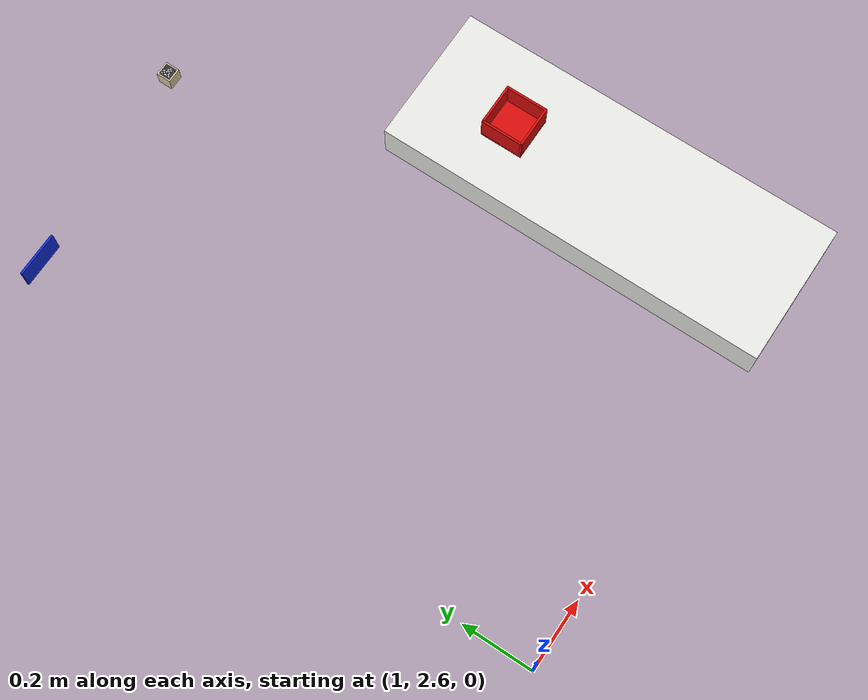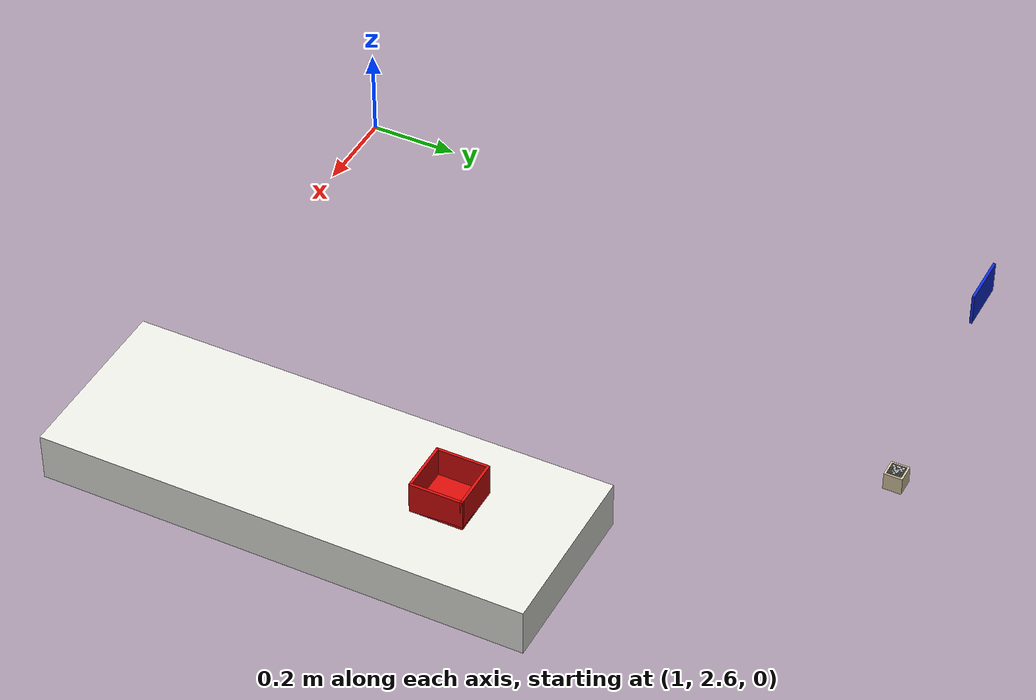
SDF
<sdf version="1.9">
 <world name="arena">
  <model name="cube_6">
   <pose>1.71626 4.16978 0.18200 0 0 0</pose>
   <link name="body">
    <inertial>
     <mass>0.04</mass>
     <inertia>
      <ixx>0.000010667</ixx>
      <iyy>0.000010667</iyy>
      <izz>0.000010667</izz>
      <ixy>0</ixy>
      <ixz>0</ixz>
      <iyz>0</iyz>
     </inertia>
    </inertial>
    <collision name="cube">
     <geometry><box><size>0.04 0.04 0.04</size></box></geometry>
     <surface><friction><ode><mu>1.2</mu><mu2>1.2</mu2></ode></friction></surface>
    </collision>
    <visual name="cube_appearance">
     <geometry><box><size>0.04 0.04 0.04</size></box></geometry>
     <material><ambient>0.85 0.79 0.64 1</ambient><diffuse>0.85 0.79 0.64 1</diffuse></material>
    </visual>
    <visual name="tag_0_0">
     <pose>-0.0140 0.0140 0.0202 0 0 0</pose>
     <geometry><plane><normal>0 0 1</normal><size>0.004 0.004</size></plane></geometry>
     <material><ambient>0.01 0.01 0.01 1</ambient><diffuse>0.01 0.01 0.01 1</diffuse></material>
    </visual>
    <visual name="tag_0_1">
     <pose>-0.0100 0.0140 0.0202 0 0 0</pose>
     <geometry><plane><normal>0 0 1</normal><size>0.004 0.004</size></plane></geometry>
     <material><ambient>0.01 0.01 0.01 1</ambient><diffuse>0.01 0.01 0.01 1</diffuse></material>
    </visual>
    <visual name="tag_0_2">
     <pose>-0.0060 0.0140 0.0202 0 0 0</pose>
     <geometry><plane><normal>0 0 1</normal><size>0.004 0.004</size></plane></geometry>
     <material><ambient>0.01 0.01 0.01 1</ambient><diffuse>0.01 0.01 0.01 1</diffuse></material>
    </visual>
    <visual name="tag_0_3">
     <pose>-0.0020 0.0140 0.0202 0 0 0</pose>
     <geometry><plane><normal>0 0 1</normal><size>0.004 0.004</size></plane></geometry>
     <material><ambient>0.01 0.01 0.01 1</ambient><diffuse>0.01 0.01 0.01 1</diffuse></material>
    </visual>
    <visual name="tag_0_4">
     <pose>0.0020 0.0140 0.0202 0 0 0</pose>
     <geometry><plane><normal>0 0 1</normal><size>0.004 0.004</size></plane></geometry>
     <material><ambient>0.01 0.01 0.01 1</ambient><diffuse>0.01 0.01 0.01 1</diffuse></material>
    </visual>
    <visual name="tag_0_5">
     <pose>0.0060 0.0140 0.0202 0 0 0</pose>
     <geometry><plane><normal>0 0 1</normal><size>0.004 0.004</size></plane></geometry>
     <material><ambient>0.01 0.01 0.01 1</ambient><diffuse>0.01 0.01 0.01 1</diffuse></material>
    </visual>
    <visual name="tag_0_6">
     <pose>0.0100 0.0140 0.0202 0 0 0</pose>
     <geometry><plane><normal>0 0 1</normal><size>0.004 0.004</size></plane></geometry>
     <material><ambient>0.01 0.01 0.01 1</ambient><diffuse>0.01 0.01 0.01 1</diffuse></material>
    </visual>
    <visual name="tag_0_7">
     <pose>0.0140 0.0140 0.0202 0 0 0</pose>
     <geometry><plane><normal>0 0 1</normal><size>0.004 0.004</size></plane></geometry>
     <material><ambient>0.01 0.01 0.01 1</ambient><diffuse>0.01 0.01 0.01 1</diffuse></material>
    </visual>
    <visual name="tag_1_0">
     <pose>-0.0140 0.0100 0.0202 0 0 0</pose>
     <geometry><plane><normal>0 0 1</normal><size>0.004 0.004</size></plane></geometry>
     <material><ambient>0.01 0.01 0.01 1</ambient><diffuse>0.01 0.01 0.01 1</diffuse></material>
    </visual>
    <visual name="tag_1_1">
     <pose>-0.0100 0.0100 0.0202 0 0 0</pose>
     <geometry><plane><normal>0 0 1</normal><size>0.004 0.004</size></plane></geometry>
     <material><ambient>0.95 0.95 0.95 1</ambient><diffuse>0.95 0.95 0.95 1</diffuse></material>
    </visual>
    <visual name="tag_1_2">
     <pose>-0.0060 0.0100 0.0202 0 0 0</pose>
     <geometry><plane><normal>0 0 1</normal><size>0.004 0.004</size></plane></geometry>
     <material><ambient>0.01 0.01 0.01 1</ambient><diffuse>0.01 0.01 0.01 1</diffuse></material>
    </visual>
    <visual name="tag_1_3">
     <pose>-0.0020 0.0100 0.0202 0 0 0</pose>
     <geometry><plane><normal>0 0 1</normal><size>0.004 0.004</size></plane></geometry>
     <material><ambient>0.95 0.95 0.95 1</ambient><diffuse>0.95 0.95 0.95 1</diffuse></material>
    </visual>
    <visual name="tag_1_4">
     <pose>0.0020 0.0100 0.0202 0 0 0</pose>
     <geometry><plane><normal>0 0 1</normal><size>0.004 0.004</size></plane></geometry>
     <material><ambient>0.01 0.01 0.01 1</ambient><diffuse>0.01 0.01 0.01 1</diffuse></material>
    </visual>
    <visual name="tag_1_5">
     <pose>0.0060 0.0100 0.0202 0 0 0</pose>
     <geometry><plane><normal>0 0 1</normal><size>0.004 0.004</size></plane></geometry>
     <material><ambient>0.01 0.01 0.01 1</ambient><diffuse>0.01 0.01 0.01 1</diffuse></material>
    </visual>
    <visual name="tag_1_6">
     <pose>0.0100 0.0100 0.0202 0 0 0</pose>
     <geometry><plane><normal>0 0 1</normal><size>0.004 0.004</size></plane></geometry>
     <material><ambient>0.01 0.01 0.01 1</ambient><diffuse>0.01 0.01 0.01 1</diffuse></material>
    </visual>
    <visual name="tag_1_7">
     <pose>0.0140 0.0100 0.0202 0 0 0</pose>
     <geometry><plane><normal>0 0 1</normal><size>0.004 0.004</size></plane></geometry>
     <material><ambient>0.01 0.01 0.01 1</ambient><diffuse>0.01 0.01 0.01 1</diffuse></material>
    </visual>
    <visual name="tag_2_0">
     <pose>-0.0140 0.0060 0.0202 0 0 0</pose>
     <geometry><plane><normal>0 0 1</normal><size>0.004 0.004</size></plane></geometry>
     <material><ambient>0.01 0.01 0.01 1</ambient><diffuse>0.01 0.01 0.01 1</diffuse></material>
    </visual>
    <visual name="tag_2_1">
     <pose>-0.0100 0.0060 0.0202 0 0 0</pose>
     <geometry><plane><normal>0 0 1</normal><size>0.004 0.004</size></plane></geometry>
     <material><ambient>0.01 0.01 0.01 1</ambient><diffuse>0.01 0.01 0.01 1</diffuse></material>
    </visual>
    <visual name="tag_2_2">
     <pose>-0.0060 0.0060 0.0202 0 0 0</pose>
     <geometry><plane><normal>0 0 1</normal><size>0.004 0.004</size></plane></geometry>
     <material><ambient>0.95 0.95 0.95 1</ambient><diffuse>0.95 0.95 0.95 1</diffuse></material>
    </visual>
    <visual name="tag_2_3">
     <pose>-0.0020 0.0060 0.0202 0 0 0</pose>
     <geometry><plane><normal>0 0 1</normal><size>0.004 0.004</size></plane></geometry>
     <material><ambient>0.01 0.01 0.01 1</ambient><diffuse>0.01 0.01 0.01 1</diffuse></material>
    </visual>
    <visual name="tag_2_4">
     <pose>0.0020 0.0060 0.0202 0 0 0</pose>
     <geometry><plane><normal>0 0 1</normal><size>0.004 0.004</size></plane></geometry>
     <material><ambient>0.01 0.01 0.01 1</ambient><diffuse>0.01 0.01 0.01 1</diffuse></material>
    </visual>
    <visual name="tag_2_5">
     <pose>0.0060 0.0060 0.0202 0 0 0</pose>
     <geometry><plane><normal>0 0 1</normal><size>0.004 0.004</size></plane></geometry>
     <material><ambient>0.01 0.01 0.01 1</ambient><diffuse>0.01 0.01 0.01 1</diffuse></material>
    </visual>
    <visual name="tag_2_6">
     <pose>0.0100 0.0060 0.0202 0 0 0</pose>
     <geometry><plane><normal>0 0 1</normal><size>0.004 0.004</size></plane></geometry>
     <material><ambient>0.01 0.01 0.01 1</ambient><diffuse>0.01 0.01 0.01 1</diffuse></material>
    </visual>
    <visual name="tag_2_7">
     <pose>0.0140 0.0060 0.0202 0 0 0</pose>
     <geometry><plane><normal>0 0 1</normal><size>0.004 0.004</size></plane></geometry>
     <material><ambient>0.01 0.01 0.01 1</ambient><diffuse>0.01 0.01 0.01 1</diffuse></material>
    </visual>
    <visual name="tag_3_0">
     <pose>-0.0140 0.0020 0.0202 0 0 0</pose>
     <geometry><plane><normal>0 0 1</normal><size>0.004 0.004</size></plane></geometry>
     <material><ambient>0.01 0.01 0.01 1</ambient><diffuse>0.01 0.01 0.01 1</diffuse></material>
    </visual>
    <visual name="tag_3_1">
     <pose>-0.0100 0.0020 0.0202 0 0 0</pose>
     <geometry><plane><normal>0 0 1</normal><size>0.004 0.004</size></plane></geometry>
     <material><ambient>0.95 0.95 0.95 1</ambient><diffuse>0.95 0.95 0.95 1</diffuse></material>
    </visual>
    <visual name="tag_3_2">
     <pose>-0.0060 0.0020 0.0202 0 0 0</pose>
     <geometry><plane><normal>0 0 1</normal><size>0.004 0.004</size></plane></geometry>
     <material><ambient>0.01 0.01 0.01 1</ambient><diffuse>0.01 0.01 0.01 1</diffuse></material>
    </visual>
    <visual name="tag_3_3">
     <pose>-0.0020 0.0020 0.0202 0 0 0</pose>
     <geometry><plane><normal>0 0 1</normal><size>0.004 0.004</size></plane></geometry>
     <material><ambient>0.95 0.95 0.95 1</ambient><diffuse>0.95 0.95 0.95 1</diffuse></material>
    </visual>
    <visual name="tag_3_4">
     <pose>0.0020 0.0020 0.0202 0 0 0</pose>
     <geometry><plane><normal>0 0 1</normal><size>0.004 0.004</size></plane></geometry>
     <material><ambient>0.95 0.95 0.95 1</ambient><diffuse>0.95 0.95 0.95 1</diffuse></material>
    </visual>
    <visual name="tag_3_5">
     <pose>0.0060 0.0020 0.0202 0 0 0</pose>
     <geometry><plane><normal>0 0 1</normal><size>0.004 0.004</size></plane></geometry>
     <material><ambient>0.95 0.95 0.95 1</ambient><diffuse>0.95 0.95 0.95 1</diffuse></material>
    </visual>
    <visual name="tag_3_6">
     <pose>0.0100 0.0020 0.0202 0 0 0</pose>
     <geometry><plane><normal>0 0 1</normal><size>0.004 0.004</size></plane></geometry>
     <material><ambient>0.01 0.01 0.01 1</ambient><diffuse>0.01 0.01 0.01 1</diffuse></material>
    </visual>
    <visual name="tag_3_7">
     <pose>0.0140 0.0020 0.0202 0 0 0</pose>
     <geometry><plane><normal>0 0 1</normal><size>0.004 0.004</size></plane></geometry>
     <material><ambient>0.01 0.01 0.01 1</ambient><diffuse>0.01 0.01 0.01 1</diffuse></material>
    </visual>
    <visual name="tag_4_0">
     <pose>-0.0140 -0.0020 0.0202 0 0 0</pose>
     <geometry><plane><normal>0 0 1</normal><size>0.004 0.004</size></plane></geometry>
     <material><ambient>0.01 0.01 0.01 1</ambient><diffuse>0.01 0.01 0.01 1</diffuse></material>
    </visual>
    <visual name="tag_4_1">
     <pose>-0.0100 -0.0020 0.0202 0 0 0</pose>
     <geometry><plane><normal>0 0 1</normal><size>0.004 0.004</size></plane></geometry>
     <material><ambient>0.95 0.95 0.95 1</ambient><diffuse>0.95 0.95 0.95 1</diffuse></material>
    </visual>
    <visual name="tag_4_2">
     <pose>-0.0060 -0.0020 0.0202 0 0 0</pose>
     <geometry><plane><normal>0 0 1</normal><size>0.004 0.004</size></plane></geometry>
     <material><ambient>0.01 0.01 0.01 1</ambient><diffuse>0.01 0.01 0.01 1</diffuse></material>
    </visual>
    <visual name="tag_4_3">
     <pose>-0.0020 -0.0020 0.0202 0 0 0</pose>
     <geometry><plane><normal>0 0 1</normal><size>0.004 0.004</size></plane></geometry>
     <material><ambient>0.01 0.01 0.01 1</ambient><diffuse>0.01 0.01 0.01 1</diffuse></material>
    </visual>
    <visual name="tag_4_4">
     <pose>0.0020 -0.0020 0.0202 0 0 0</pose>
     <geometry><plane><normal>0 0 1</normal><size>0.004 0.004</size></plane></geometry>
     <material><ambient>0.95 0.95 0.95 1</ambient><diffuse>0.95 0.95 0.95 1</diffuse></material>
    </visual>
    <visual name="tag_4_5">
     <pose>0.0060 -0.0020 0.0202 0 0 0</pose>
     <geometry><plane><normal>0 0 1</normal><size>0.004 0.004</size></plane></geometry>
     <material><ambient>0.01 0.01 0.01 1</ambient><diffuse>0.01 0.01 0.01 1</diffuse></material>
    </visual>
    <visual name="tag_4_6">
     <pose>0.0100 -0.0020 0.0202 0 0 0</pose>
     <geometry><plane><normal>0 0 1</normal><size>0.004 0.004</size></plane></geometry>
     <material><ambient>0.95 0.95 0.95 1</ambient><diffuse>0.95 0.95 0.95 1</diffuse></material>
    </visual>
    <visual name="tag_4_7">
     <pose>0.0140 -0.0020 0.0202 0 0 0</pose>
     <geometry><plane><normal>0 0 1</normal><size>0.004 0.004</size></plane></geometry>
     <material><ambient>0.01 0.01 0.01 1</ambient><diffuse>0.01 0.01 0.01 1</diffuse></material>
    </visual>
    <visual name="tag_5_0">
     <pose>-0.0140 -0.0060 0.0202 0 0 0</pose>
     <geometry><plane><normal>0 0 1</normal><size>0.004 0.004</size></plane></geometry>
     <material><ambient>0.01 0.01 0.01 1</ambient><diffuse>0.01 0.01 0.01 1</diffuse></material>
    </visual>
    <visual name="tag_5_1">
     <pose>-0.0100 -0.0060 0.0202 0 0 0</pose>
     <geometry><plane><normal>0 0 1</normal><size>0.004 0.004</size></plane></geometry>
     <material><ambient>0.01 0.01 0.01 1</ambient><diffuse>0.01 0.01 0.01 1</diffuse></material>
    </visual>
    <visual name="tag_5_2">
     <pose>-0.0060 -0.0060 0.0202 0 0 0</pose>
     <geometry><plane><normal>0 0 1</normal><size>0.004 0.004</size></plane></geometry>
     <material><ambient>0.95 0.95 0.95 1</ambient><diffuse>0.95 0.95 0.95 1</diffuse></material>
    </visual>
    <visual name="tag_5_3">
     <pose>-0.0020 -0.0060 0.0202 0 0 0</pose>
     <geometry><plane><normal>0 0 1</normal><size>0.004 0.004</size></plane></geometry>
     <material><ambient>0.95 0.95 0.95 1</ambient><diffuse>0.95 0.95 0.95 1</diffuse></material>
    </visual>
    <visual name="tag_5_4">
     <pose>0.0020 -0.0060 0.0202 0 0 0</pose>
     <geometry><plane><normal>0 0 1</normal><size>0.004 0.004</size></plane></geometry>
     <material><ambient>0.01 0.01 0.01 1</ambient><diffuse>0.01 0.01 0.01 1</diffuse></material>
    </visual>
    <visual name="tag_5_5">
     <pose>0.0060 -0.0060 0.0202 0 0 0</pose>
     <geometry><plane><normal>0 0 1</normal><size>0.004 0.004</size></plane></geometry>
     <material><ambient>0.95 0.95 0.95 1</ambient><diffuse>0.95 0.95 0.95 1</diffuse></material>
    </visual>
    <visual name="tag_5_6">
     <pose>0.0100 -0.0060 0.0202 0 0 0</pose>
     <geometry><plane><normal>0 0 1</normal><size>0.004 0.004</size></plane></geometry>
     <material><ambient>0.01 0.01 0.01 1</ambient><diffuse>0.01 0.01 0.01 1</diffuse></material>
    </visual>
    <visual name="tag_5_7">
     <pose>0.0140 -0.0060 0.0202 0 0 0</pose>
     <geometry><plane><normal>0 0 1</normal><size>0.004 0.004</size></plane></geometry>
     <material><ambient>0.01 0.01 0.01 1</ambient><diffuse>0.01 0.01 0.01 1</diffuse></material>
    </visual>
    <visual name="tag_6_0">
     <pose>-0.0140 -0.0100 0.0202 0 0 0</pose>
     <geometry><plane><normal>0 0 1</normal><size>0.004 0.004</size></plane></geometry>
     <material><ambient>0.01 0.01 0.01 1</ambient><diffuse>0.01 0.01 0.01 1</diffuse></material>
    </visual>
    <visual name="tag_6_1">
     <pose>-0.0100 -0.0100 0.0202 0 0 0</pose>
     <geometry><plane><normal>0 0 1</normal><size>0.004 0.004</size></plane></geometry>
     <material><ambient>0.95 0.95 0.95 1</ambient><diffuse>0.95 0.95 0.95 1</diffuse></material>
    </visual>
    <visual name="tag_6_2">
     <pose>-0.0060 -0.0100 0.0202 0 0 0</pose>
     <geometry><plane><normal>0 0 1</normal><size>0.004 0.004</size></plane></geometry>
     <material><ambient>0.01 0.01 0.01 1</ambient><diffuse>0.01 0.01 0.01 1</diffuse></material>
    </visual>
    <visual name="tag_6_3">
     <pose>-0.0020 -0.0100 0.0202 0 0 0</pose>
     <geometry><plane><normal>0 0 1</normal><size>0.004 0.004</size></plane></geometry>
     <material><ambient>0.01 0.01 0.01 1</ambient><diffuse>0.01 0.01 0.01 1</diffuse></material>
    </visual>
    <visual name="tag_6_4">
     <pose>0.0020 -0.0100 0.0202 0 0 0</pose>
     <geometry><plane><normal>0 0 1</normal><size>0.004 0.004</size></plane></geometry>
     <material><ambient>0.01 0.01 0.01 1</ambient><diffuse>0.01 0.01 0.01 1</diffuse></material>
    </visual>
    <visual name="tag_6_5">
     <pose>0.0060 -0.0100 0.0202 0 0 0</pose>
     <geometry><plane><normal>0 0 1</normal><size>0.004 0.004</size></plane></geometry>
     <material><ambient>0.01 0.01 0.01 1</ambient><diffuse>0.01 0.01 0.01 1</diffuse></material>
    </visual>
    <visual name="tag_6_6">
     <pose>0.0100 -0.0100 0.0202 0 0 0</pose>
     <geometry><plane><normal>0 0 1</normal><size>0.004 0.004</size></plane></geometry>
     <material><ambient>0.01 0.01 0.01 1</ambient><diffuse>0.01 0.01 0.01 1</diffuse></material>
    </visual>
    <visual name="tag_6_7">
     <pose>0.0140 -0.0100 0.0202 0 0 0</pose>
     <geometry><plane><normal>0 0 1</normal><size>0.004 0.004</size></plane></geometry>
     <material><ambient>0.01 0.01 0.01 1</ambient><diffuse>0.01 0.01 0.01 1</diffuse></material>
    </visual>
    <visual name="tag_7_0">
     <pose>-0.0140 -0.0140 0.0202 0 0 0</pose>
     <geometry><plane><normal>0 0 1</normal><size>0.004 0.004</size></plane></geometry>
     <material><ambient>0.01 0.01 0.01 1</ambient><diffuse>0.01 0.01 0.01 1</diffuse></material>
    </visual>
    <visual name="tag_7_1">
     <pose>-0.0100 -0.0140 0.0202 0 0 0</pose>
     <geometry><plane><normal>0 0 1</normal><size>0.004 0.004</size></plane></geometry>
     <material><ambient>0.01 0.01 0.01 1</ambient><diffuse>0.01 0.01 0.01 1</diffuse></material>
    </visual>
    <visual name="tag_7_2">
     <pose>-0.0060 -0.0140 0.0202 0 0 0</pose>
     <geometry><plane><normal>0 0 1</normal><size>0.004 0.004</size></plane></geometry>
     <material><ambient>0.01 0.01 0.01 1</ambient><diffuse>0.01 0.01 0.01 1</diffuse></material>
    </visual>
    <visual name="tag_7_3">
     <pose>-0.0020 -0.0140 0.0202 0 0 0</pose>
     <geometry><plane><normal>0 0 1</normal><size>0.004 0.004</size></plane></geometry>
     <material><ambient>0.01 0.01 0.01 1</ambient><diffuse>0.01 0.01 0.01 1</diffuse></material>
    </visual>
    <visual name="tag_7_4">
     <pose>0.0020 -0.0140 0.0202 0 0 0</pose>
     <geometry><plane><normal>0 0 1</normal><size>0.004 0.004</size></plane></geometry>
     <material><ambient>0.01 0.01 0.01 1</ambient><diffuse>0.01 0.01 0.01 1</diffuse></material>
    </visual>
    <visual name="tag_7_5">
     <pose>0.0060 -0.0140 0.0202 0 0 0</pose>
     <geometry><plane><normal>0 0 1</normal><size>0.004 0.004</size></plane></geometry>
     <material><ambient>0.01 0.01 0.01 1</ambient><diffuse>0.01 0.01 0.01 1</diffuse></material>
    </visual>
    <visual name="tag_7_6">
     <pose>0.0100 -0.0140 0.0202 0 0 0</pose>
     <geometry><plane><normal>0 0 1</normal><size>0.004 0.004</size></plane></geometry>
     <material><ambient>0.01 0.01 0.01 1</ambient><diffuse>0.01 0.01 0.01 1</diffuse></material>
    </visual>
    <visual name="tag_7_7">
     <pose>0.0140 -0.0140 0.0202 0 0 0</pose>
     <geometry><plane><normal>0 0 1</normal><size>0.004 0.004</size></plane></geometry>
     <material><ambient>0.01 0.01 0.01 1</ambient><diffuse>0.01 0.01 0.01 1</diffuse></material>
    </visual>
   </link>
  </model>
  <model name="ws_3_blue_right">
   <static>true</static>
   <pose>1.13627 4.12324 0.19850 0 0 0.0000000</pose>
   <link name="body">
    <collision name="collision"><geometry><box><size>0.12000 0.00600 0.07300</size></box></geometry></collision>
    <visual name="appearance">
     <geometry><box><size>0.12000 0.00600 0.07300</size></box></geometry>
     <material><ambient>0.06 0.17 0.85 1</ambient><diffuse>0.06 0.17 0.85 1</diffuse></material>
    </visual>
   </link>
  </model>
  <model name="ws_4_table">
   <static>true</static>
   <pose>2.12000 3.10000 0.05500 0 0 0.0000000</pose>
   <link name="body">
    <collision name="collision"><geometry><box><size>0.40000 1.10000 0.11000</size></box></geometry></collision>
    <visual name="appearance">
     <geometry><box><size>0.40000 1.10000 0.11000</size></box></geometry>
     <material><ambient>0.91 0.91 0.89 1</ambient><diffuse>0.91 0.91 0.89 1</diffuse></material>
    </visual>
   </link>
  </model>
  <model name="ws_4_red_base">
   <static>true</static>
   <pose>2.11000 3.38000 0.11300 0 0 0.0000000</pose>
   <link name="body">
    <collision name="collision"><geometry><box><size>0.12000 0.12000 0.00600</size></box></geometry></collision>
    <visual name="appearance">
     <geometry><box><size>0.12000 0.12000 0.00600</size></box></geometry>
     <material><ambient>0.85 0.05 0.04 1</ambient><diffuse>0.85 0.05 0.04 1</diffuse></material>
    </visual>
   </link>
  </model>
  <model name="ws_4_red_front">
   <static>true</static>
   <pose>2.16700 3.38000 0.14650 0 0 0.0000000</pose>
   <link name="body">
    <collision name="collision"><geometry><box><size>0.00600 0.12000 0.07300</size></box></geometry></collision>
    <visual name="appearance">
     <geometry><box><size>0.00600 0.12000 0.07300</size></box></geometry>
     <material><ambient>0.85 0.05 0.04 1</ambient><diffuse>0.85 0.05 0.04 1</diffuse></material>
    </visual>
   </link>
  </model>
  <model name="ws_4_red_back">
   <static>true</static>
   <pose>2.05300 3.38000 0.14650 0 0 0.0000000</pose>
   <link name="body">
    <collision name="collision"><geometry><box><size>0.00600 0.12000 0.07300</size></box></geometry></collision>
    <visual name="appearance">
     <geometry><box><size>0.00600 0.12000 0.07300</size></box></geometry>
     <material><ambient>0.85 0.05 0.04 1</ambient><diffuse>0.85 0.05 0.04 1</diffuse></material>
    </visual>
   </link>
  </model>
  <model name="ws_4_red_left">
   <static>true</static>
   <pose>2.11000 3.43700 0.14650 0 0 0.0000000</pose>
   <link name="body">
    <collision name="collision"><geometry><box><size>0.12000 0.00600 0.07300</size></box></geometry></collision>
    <visual name="appearance">
     <geometry><box><size>0.12000 0.00600 0.07300</size></box></geometry>
     <material><ambient>0.85 0.05 0.04 1</ambient><diffuse>0.85 0.05 0.04 1</diffuse></material>
    </visual>
   </link>
  </model>
  <model name="ws_4_red_right">
   <static>true</static>
   <pose>2.11000 3.32300 0.14650 0 0 0.0000000</pose>
   <link name="body">
    <collision name="collision"><geometry><box><size>0.12000 0.00600 0.07300</size></box></geometry></collision>
    <visual name="appearance">
     <geometry><box><size>0.12000 0.00600 0.07300</size></box></geometry>
     <material><ambient>0.85 0.05 0.04 1</ambient><diffuse>0.85 0.05 0.04 1</diffuse></material>
    </visual>
   </link>
  </model>
 </world>
</sdf>
